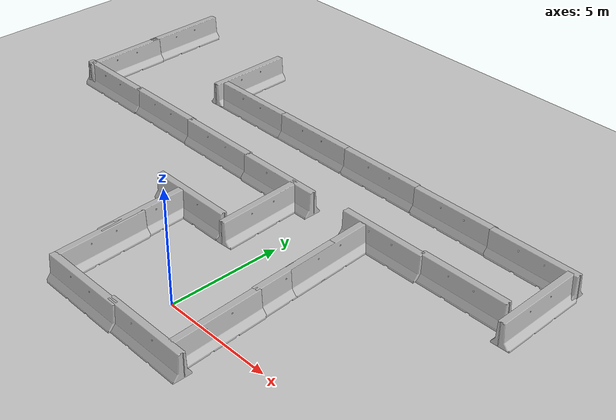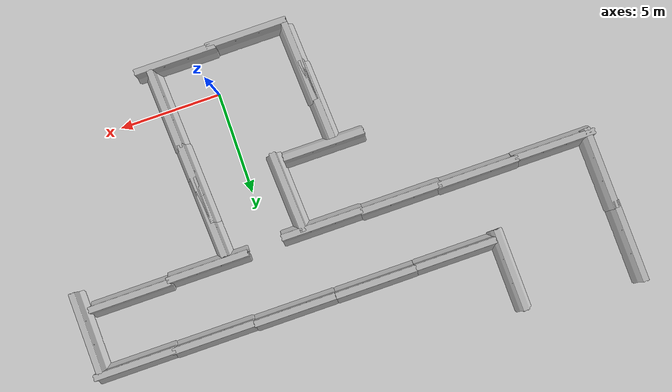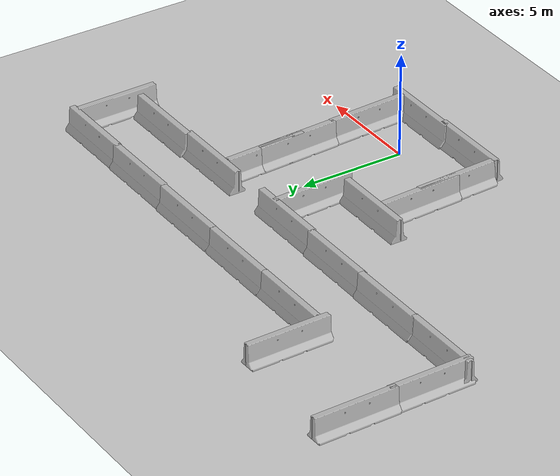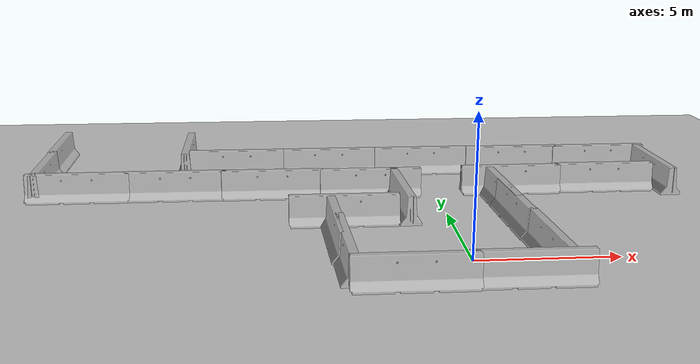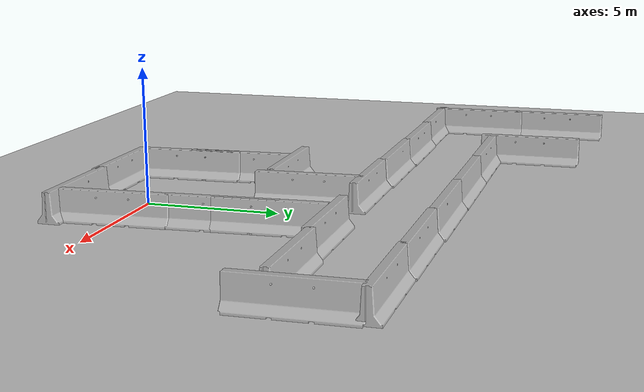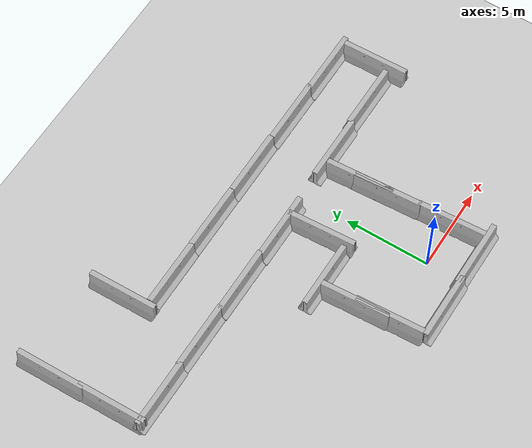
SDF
<sdf version="1.6">
 <world name="default">
  <light name="sun" type="directional">
   <pose>0 0 10 0 -0 0</pose>
   <diffuse>0.8 0.8 0.8 1</diffuse>
   <specular>0.1 0.1 0.1 1</specular>
   <attenuation>
    <range>1000</range>
    <constant>0.9</constant>
    <linear>0.01</linear>
    <quadratic>0.001</quadratic>
   </attenuation>
   <direction>-0.5 0.5 -1</direction>
  </light>
  <model name="ground_plane">
   <static>1</static>
   <link name="link">
    <collision name="collision">
     <geometry><plane><normal>0 0 1</normal><size>100 100</size></plane></geometry>
     <surface><friction><ode><mu>100</mu><mu2>50</mu2></ode></friction></surface>
    </collision>
    <visual name="visual">
     <cast_shadows>0</cast_shadows>
     <geometry><plane><normal>0 0 1</normal><size>100 100</size></plane></geometry>
     <material>
      <script><uri>file://media/materials/scripts/gazebo.material</uri><name>Gazebo/Grey</name></script>
     </material>
    </visual>
   </link>
  </model>
  <gravity>0 0 -9.8</gravity>
  <magnetic_field>6e-06 2.3e-05 -4.2e-05</magnetic_field>
  <atmosphere type="adiabatic"/>
  <physics name="default_physics" default="0" type="ode">
   <max_step_size>0.001</max_step_size>
   <real_time_factor>1</real_time_factor>
   <real_time_update_rate>1000</real_time_update_rate>
  </physics>
  <scene><ambient>0.4 0.4 0.4 1</ambient><background>0.7 0.7 0.7 1</background><shadows>1</shadows></scene>
  <spherical_coordinates>
   <surface_model>EARTH_WGS84</surface_model>
   <latitude_deg>0</latitude_deg>
   <longitude_deg>0</longitude_deg>
   <elevation>0</elevation>
   <heading_deg>0</heading_deg>
  </spherical_coordinates>
  <model name="jersey_barrier">
   <static>1</static>
   <link name="link">
    <visual name="visual">
     <geometry>
      <mesh><uri>model://jersey_barrier/meshes/jersey_barrier.dae</uri><scale>1 1 1</scale></mesh>
     </geometry>
    </visual>
    <collision name="upright">
     <pose>0 0 0.5715 0 -0 0</pose>
     <geometry><box><size>4.06542 0.3063 1.143</size></box></geometry>
    </collision>
    <collision name="base">
     <pose>0 0 0.032258 0 -0 0</pose>
     <geometry><box><size>4.06542 0.8107 0.064516</size></box></geometry>
    </collision>
    <collision name="base2">
     <pose>0 0 0.1 0 -0 0</pose>
     <geometry><box><size>4.06542 0.65 0.1</size></box></geometry>
    </collision>
    <collision name="base3">
     <pose>0 0 0.2 0 -0 0</pose>
     <geometry><box><size>4.06542 0.5 0.1</size></box></geometry>
    </collision>
    <collision name="left-angle">
     <pose>0 -0.224 0.2401 0.9 -0 0</pose>
     <geometry><box><size>4.06542 0.5 0.064516</size></box></geometry>
    </collision>
    <collision name="right-angle">
     <pose>0 0.224 0.2401 -0.9 0 0</pose>
     <geometry><box><size>4.06542 0.5 0.064516</size></box></geometry>
    </collision>
   </link>
   <pose>-4.19502 -0.076514 0 0 0 -1.51917</pose>
  </model>
  <model name="jersey_barrier_clone">
   <static>1</static>
   <link name="link">
    <visual name="visual">
     <geometry>
      <mesh><uri>model://jersey_barrier/meshes/jersey_barrier.dae</uri><scale>1 1 1</scale></mesh>
     </geometry>
    </visual>
    <collision name="upright">
     <pose>0 0 0.5715 0 -0 0</pose>
     <geometry><box><size>4.06542 0.3063 1.143</size></box></geometry>
    </collision>
    <collision name="base">
     <pose>0 0 0.032258 0 -0 0</pose>
     <geometry><box><size>4.06542 0.8107 0.064516</size></box></geometry>
    </collision>
    <collision name="base2">
     <pose>0 0 0.1 0 -0 0</pose>
     <geometry><box><size>4.06542 0.65 0.1</size></box></geometry>
    </collision>
    <collision name="base3">
     <pose>0 0 0.2 0 -0 0</pose>
     <geometry><box><size>4.06542 0.5 0.1</size></box></geometry>
    </collision>
    <collision name="left-angle">
     <pose>0 -0.224 0.2401 0.9 -0 0</pose>
     <geometry><box><size>4.06542 0.5 0.064516</size></box></geometry>
    </collision>
    <collision name="right-angle">
     <pose>0 0.224 0.2401 -0.9 0 0</pose>
     <geometry><box><size>4.06542 0.5 0.064516</size></box></geometry>
    </collision>
   </link>
   <pose>2.57708 0.001451 0 0 0 -1.51917</pose>
  </model>
  <model name="jersey_barrier_clone_0">
   <static>1</static>
   <link name="link">
    <visual name="visual">
     <geometry>
      <mesh><uri>model://jersey_barrier/meshes/jersey_barrier.dae</uri><scale>1 1 1</scale></mesh>
     </geometry>
    </visual>
    <collision name="upright">
     <pose>0 0 0.5715 0 -0 0</pose>
     <geometry><box><size>4.06542 0.3063 1.143</size></box></geometry>
    </collision>
    <collision name="base">
     <pose>0 0 0.032258 0 -0 0</pose>
     <geometry><box><size>4.06542 0.8107 0.064516</size></box></geometry>
    </collision>
    <collision name="base2">
     <pose>0 0 0.1 0 -0 0</pose>
     <geometry><box><size>4.06542 0.65 0.1</size></box></geometry>
    </collision>
    <collision name="base3">
     <pose>0 0 0.2 0 -0 0</pose>
     <geometry><box><size>4.06542 0.5 0.1</size></box></geometry>
    </collision>
    <collision name="left-angle">
     <pose>0 -0.224 0.2401 0.9 -0 0</pose>
     <geometry><box><size>4.06542 0.5 0.064516</size></box></geometry>
    </collision>
    <collision name="right-angle">
     <pose>0 0.224 0.2401 -0.9 0 0</pose>
     <geometry><box><size>4.06542 0.5 0.064516</size></box></geometry>
    </collision>
   </link>
   <pose>-4.35299 1.91109 0 0 0 -1.51917</pose>
  </model>
  <model name="jersey_barrier_clone_1">
   <static>1</static>
   <link name="link">
    <visual name="visual">
     <geometry>
      <mesh><uri>model://jersey_barrier/meshes/jersey_barrier.dae</uri><scale>1 1 1</scale></mesh>
     </geometry>
    </visual>
    <collision name="upright">
     <pose>0 0 0.5715 0 -0 0</pose>
     <geometry><box><size>4.06542 0.3063 1.143</size></box></geometry>
    </collision>
    <collision name="base">
     <pose>0 0 0.032258 0 -0 0</pose>
     <geometry><box><size>4.06542 0.8107 0.064516</size></box></geometry>
    </collision>
    <collision name="base2">
     <pose>0 0 0.1 0 -0 0</pose>
     <geometry><box><size>4.06542 0.65 0.1</size></box></geometry>
    </collision>
    <collision name="base3">
     <pose>0 0 0.2 0 -0 0</pose>
     <geometry><box><size>4.06542 0.5 0.1</size></box></geometry>
    </collision>
    <collision name="left-angle">
     <pose>0 -0.224 0.2401 0.9 -0 0</pose>
     <geometry><box><size>4.06542 0.5 0.064516</size></box></geometry>
    </collision>
    <collision name="right-angle">
     <pose>0 0.224 0.2401 -0.9 0 0</pose>
     <geometry><box><size>4.06542 0.5 0.064516</size></box></geometry>
    </collision>
   </link>
   <pose>2.34286 3.84901 0 0 0 -1.51917</pose>
  </model>
  <model name="jersey_barrier_0">
   <static>1</static>
   <link name="link">
    <visual name="visual">
     <geometry>
      <mesh><uri>model://jersey_barrier/meshes/jersey_barrier.dae</uri><scale>1 1 1</scale></mesh>
     </geometry>
    </visual>
    <collision name="upright">
     <pose>0 0 0.5715 0 -0 0</pose>
     <geometry><box><size>4.06542 0.3063 1.143</size></box></geometry>
    </collision>
    <collision name="base">
     <pose>0 0 0.032258 0 -0 0</pose>
     <geometry><box><size>4.06542 0.8107 0.064516</size></box></geometry>
    </collision>
    <collision name="base2">
     <pose>0 0 0.1 0 -0 0</pose>
     <geometry><box><size>4.06542 0.65 0.1</size></box></geometry>
    </collision>
    <collision name="base3">
     <pose>0 0 0.2 0 -0 0</pose>
     <geometry><box><size>4.06542 0.5 0.1</size></box></geometry>
    </collision>
    <collision name="left-angle">
     <pose>0 -0.224 0.2401 0.9 -0 0</pose>
     <geometry><box><size>4.06542 0.5 0.064516</size></box></geometry>
    </collision>
    <collision name="right-angle">
     <pose>0 0.224 0.2401 -0.9 0 0</pose>
     <geometry><box><size>4.06542 0.5 0.064516</size></box></geometry>
    </collision>
   </link>
   <pose>-3.96796 4.06167 0 0 -0 0</pose>
  </model>
  <model name="jersey_barrier_clone_2">
   <static>1</static>
   <link name="link">
    <visual name="visual">
     <geometry>
      <mesh><uri>model://jersey_barrier/meshes/jersey_barrier.dae</uri><scale>1 1 1</scale></mesh>
     </geometry>
    </visual>
    <collision name="upright">
     <pose>0 0 0.5715 0 -0 0</pose>
     <geometry><box><size>4.06542 0.3063 1.143</size></box></geometry>
    </collision>
    <collision name="base">
     <pose>0 0 0.032258 0 -0 0</pose>
     <geometry><box><size>4.06542 0.8107 0.064516</size></box></geometry>
    </collision>
    <collision name="base2">
     <pose>0 0 0.1 0 -0 0</pose>
     <geometry><box><size>4.06542 0.65 0.1</size></box></geometry>
    </collision>
    <collision name="base3">
     <pose>0 0 0.2 0 -0 0</pose>
     <geometry><box><size>4.06542 0.5 0.1</size></box></geometry>
    </collision>
    <collision name="left-angle">
     <pose>0 -0.224 0.2401 0.9 -0 0</pose>
     <geometry><box><size>4.06542 0.5 0.064516</size></box></geometry>
    </collision>
    <collision name="right-angle">
     <pose>0 0.224 0.2401 -0.9 0 0</pose>
     <geometry><box><size>4.06542 0.5 0.064516</size></box></geometry>
    </collision>
   </link>
   <pose>-1.64012 5.6485 0 0 0 -1.51917</pose>
  </model>
  <model name="jersey_barrier_clone_3">
   <static>1</static>
   <link name="link">
    <visual name="visual">
     <geometry>
      <mesh><uri>model://jersey_barrier/meshes/jersey_barrier.dae</uri><scale>1 1 1</scale></mesh>
     </geometry>
    </visual>
    <collision name="upright">
     <pose>0 0 0.5715 0 -0 0</pose>
     <geometry><box><size>4.06542 0.3063 1.143</size></box></geometry>
    </collision>
    <collision name="base">
     <pose>0 0 0.032258 0 -0 0</pose>
     <geometry><box><size>4.06542 0.8107 0.064516</size></box></geometry>
    </collision>
    <collision name="base2">
     <pose>0 0 0.1 0 -0 0</pose>
     <geometry><box><size>4.06542 0.65 0.1</size></box></geometry>
    </collision>
    <collision name="base3">
     <pose>0 0 0.2 0 -0 0</pose>
     <geometry><box><size>4.06542 0.5 0.1</size></box></geometry>
    </collision>
    <collision name="left-angle">
     <pose>0 -0.224 0.2401 0.9 -0 0</pose>
     <geometry><box><size>4.06542 0.5 0.064516</size></box></geometry>
    </collision>
    <collision name="right-angle">
     <pose>0 0.224 0.2401 -0.9 0 0</pose>
     <geometry><box><size>4.06542 0.5 0.064516</size></box></geometry>
    </collision>
   </link>
   <pose>2.2589 5.52856 0 0 0 -1.51917</pose>
  </model>
  <model name="jersey_barrier_1">
   <static>1</static>
   <link name="link">
    <visual name="visual">
     <geometry>
      <mesh><uri>model://jersey_barrier/meshes/jersey_barrier.dae</uri><scale>1 1 1</scale></mesh>
     </geometry>
    </visual>
    <collision name="upright">
     <pose>0 0 0.5715 0 -0 0</pose>
     <geometry><box><size>4.06542 0.3063 1.143</size></box></geometry>
    </collision>
    <collision name="base">
     <pose>0 0 0.032258 0 -0 0</pose>
     <geometry><box><size>4.06542 0.8107 0.064516</size></box></geometry>
    </collision>
    <collision name="base2">
     <pose>0 0 0.1 0 -0 0</pose>
     <geometry><box><size>4.06542 0.65 0.1</size></box></geometry>
    </collision>
    <collision name="base3">
     <pose>0 0 0.2 0 -0 0</pose>
     <geometry><box><size>4.06542 0.5 0.1</size></box></geometry>
    </collision>
    <collision name="left-angle">
     <pose>0 -0.224 0.2401 0.9 -0 0</pose>
     <geometry><box><size>4.06542 0.5 0.064516</size></box></geometry>
    </collision>
    <collision name="right-angle">
     <pose>0 0.224 0.2401 -0.9 0 0</pose>
     <geometry><box><size>4.06542 0.5 0.064516</size></box></geometry>
    </collision>
   </link>
   <pose>-2.67787 7.59337 0 0 -0 0</pose>
  </model>
  <model name="jersey_barrier_2">
   <static>1</static>
   <link name="link">
    <visual name="visual">
     <geometry>
      <mesh><uri>model://jersey_barrier/meshes/jersey_barrier.dae</uri><scale>1 1 1</scale></mesh>
     </geometry>
    </visual>
    <collision name="upright">
     <pose>0 0 0.5715 0 -0 0</pose>
     <geometry><box><size>4.06542 0.3063 1.143</size></box></geometry>
    </collision>
    <collision name="base">
     <pose>0 0 0.032258 0 -0 0</pose>
     <geometry><box><size>4.06542 0.8107 0.064516</size></box></geometry>
    </collision>
    <collision name="base2">
     <pose>0 0 0.1 0 -0 0</pose>
     <geometry><box><size>4.06542 0.65 0.1</size></box></geometry>
    </collision>
    <collision name="base3">
     <pose>0 0 0.2 0 -0 0</pose>
     <geometry><box><size>4.06542 0.5 0.1</size></box></geometry>
    </collision>
    <collision name="left-angle">
     <pose>0 -0.224 0.2401 0.9 -0 0</pose>
     <geometry><box><size>4.06542 0.5 0.064516</size></box></geometry>
    </collision>
    <collision name="right-angle">
     <pose>0 0.224 0.2401 -0.9 0 0</pose>
     <geometry><box><size>4.06542 0.5 0.064516</size></box></geometry>
    </collision>
   </link>
   <pose>3.06768 7.72143 0 0 -0 0</pose>
  </model>
  <model name="jersey_barrier_1_clone">
   <static>1</static>
   <link name="link">
    <visual name="visual">
     <geometry>
      <mesh><uri>model://jersey_barrier/meshes/jersey_barrier.dae</uri><scale>1 1 1</scale></mesh>
     </geometry>
    </visual>
    <collision name="upright">
     <pose>0 0 0.5715 0 -0 0</pose>
     <geometry><box><size>4.06542 0.3063 1.143</size></box></geometry>
    </collision>
    <collision name="base">
     <pose>0 0 0.032258 0 -0 0</pose>
     <geometry><box><size>4.06542 0.8107 0.064516</size></box></geometry>
    </collision>
    <collision name="base2">
     <pose>0 0 0.1 0 -0 0</pose>
     <geometry><box><size>4.06542 0.65 0.1</size></box></geometry>
    </collision>
    <collision name="base3">
     <pose>0 0 0.2 0 -0 0</pose>
     <geometry><box><size>4.06542 0.5 0.1</size></box></geometry>
    </collision>
    <collision name="left-angle">
     <pose>0 -0.224 0.2401 0.9 -0 0</pose>
     <geometry><box><size>4.06542 0.5 0.064516</size></box></geometry>
    </collision>
    <collision name="right-angle">
     <pose>0 0.224 0.2401 -0.9 0 0</pose>
     <geometry><box><size>4.06542 0.5 0.064516</size></box></geometry>
    </collision>
   </link>
   <pose>-4.19322 11.0019 0 0 -0 0</pose>
  </model>
  <model name="jersey_barrier_1_clone_0">
   <static>1</static>
   <link name="link">
    <visual name="visual">
     <geometry>
      <mesh><uri>model://jersey_barrier/meshes/jersey_barrier.dae</uri><scale>1 1 1</scale></mesh>
     </geometry>
    </visual>
    <collision name="upright">
     <pose>0 0 0.5715 0 -0 0</pose>
     <geometry><box><size>4.06542 0.3063 1.143</size></box></geometry>
    </collision>
    <collision name="base">
     <pose>0 0 0.032258 0 -0 0</pose>
     <geometry><box><size>4.06542 0.8107 0.064516</size></box></geometry>
    </collision>
    <collision name="base2">
     <pose>0 0 0.1 0 -0 0</pose>
     <geometry><box><size>4.06542 0.65 0.1</size></box></geometry>
    </collision>
    <collision name="base3">
     <pose>0 0 0.2 0 -0 0</pose>
     <geometry><box><size>4.06542 0.5 0.1</size></box></geometry>
    </collision>
    <collision name="left-angle">
     <pose>0 -0.224 0.2401 0.9 -0 0</pose>
     <geometry><box><size>4.06542 0.5 0.064516</size></box></geometry>
    </collision>
    <collision name="right-angle">
     <pose>0 0.224 0.2401 -0.9 0 0</pose>
     <geometry><box><size>4.06542 0.5 0.064516</size></box></geometry>
    </collision>
   </link>
   <pose>-0.164128 10.9904 0 0 -0 0</pose>
  </model>
  <model name="jersey_barrier_1_clone_1">
   <static>1</static>
   <link name="link">
    <visual name="visual">
     <geometry>
      <mesh><uri>model://jersey_barrier/meshes/jersey_barrier.dae</uri><scale>1 1 1</scale></mesh>
     </geometry>
    </visual>
    <collision name="upright">
     <pose>0 0 0.5715 0 -0 0</pose>
     <geometry><box><size>4.06542 0.3063 1.143</size></box></geometry>
    </collision>
    <collision name="base">
     <pose>0 0 0.032258 0 -0 0</pose>
     <geometry><box><size>4.06542 0.8107 0.064516</size></box></geometry>
    </collision>
    <collision name="base2">
     <pose>0 0 0.1 0 -0 0</pose>
     <geometry><box><size>4.06542 0.65 0.1</size></box></geometry>
    </collision>
    <collision name="base3">
     <pose>0 0 0.2 0 -0 0</pose>
     <geometry><box><size>4.06542 0.5 0.1</size></box></geometry>
    </collision>
    <collision name="left-angle">
     <pose>0 -0.224 0.2401 0.9 -0 0</pose>
     <geometry><box><size>4.06542 0.5 0.064516</size></box></geometry>
    </collision>
    <collision name="right-angle">
     <pose>0 0.224 0.2401 -0.9 0 0</pose>
     <geometry><box><size>4.06542 0.5 0.064516</size></box></geometry>
    </collision>
   </link>
   <pose>3.85778 10.9428 0 0 -0 0</pose>
  </model>
  <model name="jersey_barrier_1_clone_2">
   <static>1</static>
   <link name="link">
    <visual name="visual">
     <geometry>
      <mesh><uri>model://jersey_barrier/meshes/jersey_barrier.dae</uri><scale>1 1 1</scale></mesh>
     </geometry>
    </visual>
    <collision name="upright">
     <pose>0 0 0.5715 0 -0 0</pose>
     <geometry><box><size>4.06542 0.3063 1.143</size></box></geometry>
    </collision>
    <collision name="base">
     <pose>0 0 0.032258 0 -0 0</pose>
     <geometry><box><size>4.06542 0.8107 0.064516</size></box></geometry>
    </collision>
    <collision name="base2">
     <pose>0 0 0.1 0 -0 0</pose>
     <geometry><box><size>4.06542 0.65 0.1</size></box></geometry>
    </collision>
    <collision name="base3">
     <pose>0 0 0.2 0 -0 0</pose>
     <geometry><box><size>4.06542 0.5 0.1</size></box></geometry>
    </collision>
    <collision name="left-angle">
     <pose>0 -0.224 0.2401 0.9 -0 0</pose>
     <geometry><box><size>4.06542 0.5 0.064516</size></box></geometry>
    </collision>
    <collision name="right-angle">
     <pose>0 0.224 0.2401 -0.9 0 0</pose>
     <geometry><box><size>4.06542 0.5 0.064516</size></box></geometry>
    </collision>
   </link>
   <pose>7.71898 10.9071 0 0 -0 0</pose>
  </model>
  <model name="jersey_barrier_1_clone_3">
   <static>1</static>
   <link name="link">
    <visual name="visual">
     <geometry>
      <mesh><uri>model://jersey_barrier/meshes/jersey_barrier.dae</uri><scale>1 1 1</scale></mesh>
     </geometry>
    </visual>
    <collision name="upright">
     <pose>0 0 0.5715 0 -0 0</pose>
     <geometry><box><size>4.06542 0.3063 1.143</size></box></geometry>
    </collision>
    <collision name="base">
     <pose>0 0 0.032258 0 -0 0</pose>
     <geometry><box><size>4.06542 0.8107 0.064516</size></box></geometry>
    </collision>
    <collision name="base2">
     <pose>0 0 0.1 0 -0 0</pose>
     <geometry><box><size>4.06542 0.65 0.1</size></box></geometry>
    </collision>
    <collision name="base3">
     <pose>0 0 0.2 0 -0 0</pose>
     <geometry><box><size>4.06542 0.5 0.1</size></box></geometry>
    </collision>
    <collision name="left-angle">
     <pose>0 -0.224 0.2401 0.9 -0 0</pose>
     <geometry><box><size>4.06542 0.5 0.064516</size></box></geometry>
    </collision>
    <collision name="right-angle">
     <pose>0 0.224 0.2401 -0.9 0 0</pose>
     <geometry><box><size>4.06542 0.5 0.064516</size></box></geometry>
    </collision>
   </link>
   <pose>6.9642 7.83504 0 0 -0 0</pose>
  </model>
  <model name="jersey_barrier_1_clone_4">
   <static>1</static>
   <link name="link">
    <visual name="visual">
     <geometry>
      <mesh><uri>model://jersey_barrier/meshes/jersey_barrier.dae</uri><scale>1 1 1</scale></mesh>
     </geometry>
    </visual>
    <collision name="upright">
     <pose>0 0 0.5715 0 -0 0</pose>
     <geometry><box><size>4.06542 0.3063 1.143</size></box></geometry>
    </collision>
    <collision name="base">
     <pose>0 0 0.032258 0 -0 0</pose>
     <geometry><box><size>4.06542 0.8107 0.064516</size></box></geometry>
    </collision>
    <collision name="base2">
     <pose>0 0 0.1 0 -0 0</pose>
     <geometry><box><size>4.06542 0.65 0.1</size></box></geometry>
    </collision>
    <collision name="base3">
     <pose>0 0 0.2 0 -0 0</pose>
     <geometry><box><size>4.06542 0.5 0.1</size></box></geometry>
    </collision>
    <collision name="left-angle">
     <pose>0 -0.224 0.2401 0.9 -0 0</pose>
     <geometry><box><size>4.06542 0.5 0.064516</size></box></geometry>
    </collision>
    <collision name="right-angle">
     <pose>0 0.224 0.2401 -0.9 0 0</pose>
     <geometry><box><size>4.06542 0.5 0.064516</size></box></geometry>
    </collision>
   </link>
   <pose>-6.60726 7.65349 0 0 -0 0</pose>
  </model>
  <model name="jersey_barrier_1_clone_5">
   <static>1</static>
   <link name="link">
    <visual name="visual">
     <geometry>
      <mesh><uri>model://jersey_barrier/meshes/jersey_barrier.dae</uri><scale>1 1 1</scale></mesh>
     </geometry>
    </visual>
    <collision name="upright">
     <pose>0 0 0.5715 0 -0 0</pose>
     <geometry><box><size>4.06542 0.3063 1.143</size></box></geometry>
    </collision>
    <collision name="base">
     <pose>0 0 0.032258 0 -0 0</pose>
     <geometry><box><size>4.06542 0.8107 0.064516</size></box></geometry>
    </collision>
    <collision name="base2">
     <pose>0 0 0.1 0 -0 0</pose>
     <geometry><box><size>4.06542 0.65 0.1</size></box></geometry>
    </collision>
    <collision name="base3">
     <pose>0 0 0.2 0 -0 0</pose>
     <geometry><box><size>4.06542 0.5 0.1</size></box></geometry>
    </collision>
    <collision name="left-angle">
     <pose>0 -0.224 0.2401 0.9 -0 0</pose>
     <geometry><box><size>4.06542 0.5 0.064516</size></box></geometry>
    </collision>
    <collision name="right-angle">
     <pose>0 0.224 0.2401 -0.9 0 0</pose>
     <geometry><box><size>4.06542 0.5 0.064516</size></box></geometry>
    </collision>
   </link>
   <pose>-8.15741 10.9898 0 0 -0 0</pose>
  </model>
  <model name="jersey_barrier_1_clone_6">
   <static>1</static>
   <link name="link">
    <visual name="visual">
     <geometry>
      <mesh><uri>model://jersey_barrier/meshes/jersey_barrier.dae</uri><scale>1 1 1</scale></mesh>
     </geometry>
    </visual>
    <collision name="upright">
     <pose>0 0 0.5715 0 -0 0</pose>
     <geometry><box><size>4.06542 0.3063 1.143</size></box></geometry>
    </collision>
    <collision name="base">
     <pose>0 0 0.032258 0 -0 0</pose>
     <geometry><box><size>4.06542 0.8107 0.064516</size></box></geometry>
    </collision>
    <collision name="base2">
     <pose>0 0 0.1 0 -0 0</pose>
     <geometry><box><size>4.06542 0.65 0.1</size></box></geometry>
    </collision>
    <collision name="base3">
     <pose>0 0 0.2 0 -0 0</pose>
     <geometry><box><size>4.06542 0.5 0.1</size></box></geometry>
    </collision>
    <collision name="left-angle">
     <pose>0 -0.224 0.2401 0.9 -0 0</pose>
     <geometry><box><size>4.06542 0.5 0.064516</size></box></geometry>
    </collision>
    <collision name="right-angle">
     <pose>0 0.224 0.2401 -0.9 0 0</pose>
     <geometry><box><size>4.06542 0.5 0.064516</size></box></geometry>
    </collision>
   </link>
   <pose>-10.4486 7.68976 0 0 -0 0</pose>
  </model>
  <model name="jersey_barrier_1_clone_7">
   <static>1</static>
   <link name="link">
    <visual name="visual">
     <geometry>
      <mesh><uri>model://jersey_barrier/meshes/jersey_barrier.dae</uri><scale>1 1 1</scale></mesh>
     </geometry>
    </visual>
    <collision name="upright">
     <pose>0 0 0.5715 0 -0 0</pose>
     <geometry><box><size>4.06542 0.3063 1.143</size></box></geometry>
    </collision>
    <collision name="base">
     <pose>0 0 0.032258 0 -0 0</pose>
     <geometry><box><size>4.06542 0.8107 0.064516</size></box></geometry>
    </collision>
    <collision name="base2">
     <pose>0 0 0.1 0 -0 0</pose>
     <geometry><box><size>4.06542 0.65 0.1</size></box></geometry>
    </collision>
    <collision name="base3">
     <pose>0 0 0.2 0 -0 0</pose>
     <geometry><box><size>4.06542 0.5 0.1</size></box></geometry>
    </collision>
    <collision name="left-angle">
     <pose>0 -0.224 0.2401 0.9 -0 0</pose>
     <geometry><box><size>4.06542 0.5 0.064516</size></box></geometry>
    </collision>
    <collision name="right-angle">
     <pose>0 0.224 0.2401 -0.9 0 0</pose>
     <geometry><box><size>4.06542 0.5 0.064516</size></box></geometry>
    </collision>
   </link>
   <pose>-14.2887 7.65575 0 0 -0 0</pose>
  </model>
  <model name="jersey_barrier_1_clone_8">
   <static>1</static>
   <link name="link">
    <visual name="visual">
     <geometry>
      <mesh><uri>model://jersey_barrier/meshes/jersey_barrier.dae</uri><scale>1 1 1</scale></mesh>
     </geometry>
    </visual>
    <collision name="upright">
     <pose>0 0 0.5715 0 -0 0</pose>
     <geometry><box><size>4.06542 0.3063 1.143</size></box></geometry>
    </collision>
    <collision name="base">
     <pose>0 0 0.032258 0 -0 0</pose>
     <geometry><box><size>4.06542 0.8107 0.064516</size></box></geometry>
    </collision>
    <collision name="base2">
     <pose>0 0 0.1 0 -0 0</pose>
     <geometry><box><size>4.06542 0.65 0.1</size></box></geometry>
    </collision>
    <collision name="base3">
     <pose>0 0 0.2 0 -0 0</pose>
     <geometry><box><size>4.06542 0.5 0.1</size></box></geometry>
    </collision>
    <collision name="left-angle">
     <pose>0 -0.224 0.2401 0.9 -0 0</pose>
     <geometry><box><size>4.06542 0.5 0.064516</size></box></geometry>
    </collision>
    <collision name="right-angle">
     <pose>0 0.224 0.2401 -0.9 0 0</pose>
     <geometry><box><size>4.06542 0.5 0.064516</size></box></geometry>
    </collision>
   </link>
   <pose>-16.0172 9.4294 0 0 -0 1.58976</pose>
  </model>
  <model name="jersey_barrier_1_clone_8_clone">
   <static>1</static>
   <link name="link">
    <visual name="visual">
     <geometry>
      <mesh><uri>model://jersey_barrier/meshes/jersey_barrier.dae</uri><scale>1 1 1</scale></mesh>
     </geometry>
    </visual>
    <collision name="upright">
     <pose>0 0 0.5715 0 -0 0</pose>
     <geometry><box><size>4.06542 0.3063 1.143</size></box></geometry>
    </collision>
    <collision name="base">
     <pose>0 0 0.032258 0 -0 0</pose>
     <geometry><box><size>4.06542 0.8107 0.064516</size></box></geometry>
    </collision>
    <collision name="base2">
     <pose>0 0 0.1 0 -0 0</pose>
     <geometry><box><size>4.06542 0.65 0.1</size></box></geometry>
    </collision>
    <collision name="base3">
     <pose>0 0 0.2 0 -0 0</pose>
     <geometry><box><size>4.06542 0.5 0.1</size></box></geometry>
    </collision>
    <collision name="left-angle">
     <pose>0 -0.224 0.2401 0.9 -0 0</pose>
     <geometry><box><size>4.06542 0.5 0.064516</size></box></geometry>
    </collision>
    <collision name="right-angle">
     <pose>0 0.224 0.2401 -0.9 0 0</pose>
     <geometry><box><size>4.06542 0.5 0.064516</size></box></geometry>
    </collision>
   </link>
   <pose>-16.1263 13.1019 0 0 -0 1.58976</pose>
  </model>
  <model name="jersey_barrier_1_clone_8_clone_0">
   <static>1</static>
   <link name="link">
    <visual name="visual">
     <geometry>
      <mesh><uri>model://jersey_barrier/meshes/jersey_barrier.dae</uri><scale>1 1 1</scale></mesh>
     </geometry>
    </visual>
    <collision name="upright">
     <pose>0 0 0.5715 0 -0 0</pose>
     <geometry><box><size>4.06542 0.3063 1.143</size></box></geometry>
    </collision>
    <collision name="base">
     <pose>0 0 0.032258 0 -0 0</pose>
     <geometry><box><size>4.06542 0.8107 0.064516</size></box></geometry>
    </collision>
    <collision name="base2">
     <pose>0 0 0.1 0 -0 0</pose>
     <geometry><box><size>4.06542 0.65 0.1</size></box></geometry>
    </collision>
    <collision name="base3">
     <pose>0 0 0.2 0 -0 0</pose>
     <geometry><box><size>4.06542 0.5 0.1</size></box></geometry>
    </collision>
    <collision name="left-angle">
     <pose>0 -0.224 0.2401 0.9 -0 0</pose>
     <geometry><box><size>4.06542 0.5 0.064516</size></box></geometry>
    </collision>
    <collision name="right-angle">
     <pose>0 0.224 0.2401 -0.9 0 0</pose>
     <geometry><box><size>4.06542 0.5 0.064516</size></box></geometry>
    </collision>
   </link>
   <pose>-10.3771 12.5468 0 0 -0 1.58976</pose>
  </model>
  <model name="jersey_barrier_1_clone_8_clone_1">
   <static>1</static>
   <link name="link">
    <visual name="visual">
     <geometry>
      <mesh><uri>model://jersey_barrier/meshes/jersey_barrier.dae</uri><scale>1 1 1</scale></mesh>
     </geometry>
    </visual>
    <collision name="upright">
     <pose>0 0 0.5715 0 -0 0</pose>
     <geometry><box><size>4.06542 0.3063 1.143</size></box></geometry>
    </collision>
    <collision name="base">
     <pose>0 0 0.032258 0 -0 0</pose>
     <geometry><box><size>4.06542 0.8107 0.064516</size></box></geometry>
    </collision>
    <collision name="base2">
     <pose>0 0 0.1 0 -0 0</pose>
     <geometry><box><size>4.06542 0.65 0.1</size></box></geometry>
    </collision>
    <collision name="base3">
     <pose>0 0 0.2 0 -0 0</pose>
     <geometry><box><size>4.06542 0.5 0.1</size></box></geometry>
    </collision>
    <collision name="left-angle">
     <pose>0 -0.224 0.2401 0.9 -0 0</pose>
     <geometry><box><size>4.06542 0.5 0.064516</size></box></geometry>
    </collision>
    <collision name="right-angle">
     <pose>0 0.224 0.2401 -0.9 0 0</pose>
     <geometry><box><size>4.06542 0.5 0.064516</size></box></geometry>
    </collision>
   </link>
   <pose>9.45157 8.82871 0 0 -0 1.58976</pose>
  </model>
  <model name="jersey_barrier_0_clone">
   <static>1</static>
   <link name="link">
    <visual name="visual">
     <geometry>
      <mesh><uri>model://jersey_barrier/meshes/jersey_barrier.dae</uri><scale>1 1 1</scale></mesh>
     </geometry>
    </visual>
    <collision name="upright">
     <pose>0 0 0.5715 0 -0 0</pose>
     <geometry><box><size>4.06542 0.3063 1.143</size></box></geometry>
    </collision>
    <collision name="base">
     <pose>0 0 0.032258 0 -0 0</pose>
     <geometry><box><size>4.06542 0.8107 0.064516</size></box></geometry>
    </collision>
    <collision name="base2">
     <pose>0 0 0.1 0 -0 0</pose>
     <geometry><box><size>4.06542 0.65 0.1</size></box></geometry>
    </collision>
    <collision name="base3">
     <pose>0 0 0.2 0 -0 0</pose>
     <geometry><box><size>4.06542 0.5 0.1</size></box></geometry>
    </collision>
    <collision name="left-angle">
     <pose>0 -0.224 0.2401 0.9 -0 0</pose>
     <geometry><box><size>4.06542 0.5 0.064516</size></box></geometry>
    </collision>
    <collision name="right-angle">
     <pose>0 0.224 0.2401 -0.9 0 0</pose>
     <geometry><box><size>4.06542 0.5 0.064516</size></box></geometry>
    </collision>
   </link>
   <pose>-2.21835 -2.19061 0 0 -0 0</pose>
  </model>
  <model name="jersey_barrier_0_clone_0">
   <static>1</static>
   <link name="link">
    <visual name="visual">
     <geometry>
      <mesh><uri>model://jersey_barrier/meshes/jersey_barrier.dae</uri><scale>1 1 1</scale></mesh>
     </geometry>
    </visual>
    <collision name="upright">
     <pose>0 0 0.5715 0 -0 0</pose>
     <geometry><box><size>4.06542 0.3063 1.143</size></box></geometry>
    </collision>
    <collision name="base">
     <pose>0 0 0.032258 0 -0 0</pose>
     <geometry><box><size>4.06542 0.8107 0.064516</size></box></geometry>
    </collision>
    <collision name="base2">
     <pose>0 0 0.1 0 -0 0</pose>
     <geometry><box><size>4.06542 0.65 0.1</size></box></geometry>
    </collision>
    <collision name="base3">
     <pose>0 0 0.2 0 -0 0</pose>
     <geometry><box><size>4.06542 0.5 0.1</size></box></geometry>
    </collision>
    <collision name="left-angle">
     <pose>0 -0.224 0.2401 0.9 -0 0</pose>
     <geometry><box><size>4.06542 0.5 0.064516</size></box></geometry>
    </collision>
    <collision name="right-angle">
     <pose>0 0.224 0.2401 -0.9 0 0</pose>
     <geometry><box><size>4.06542 0.5 0.064516</size></box></geometry>
    </collision>
   </link>
   <pose>1.3784 -2.11216 0 0 -0 0</pose>
  </model>
 </world>
</sdf>
